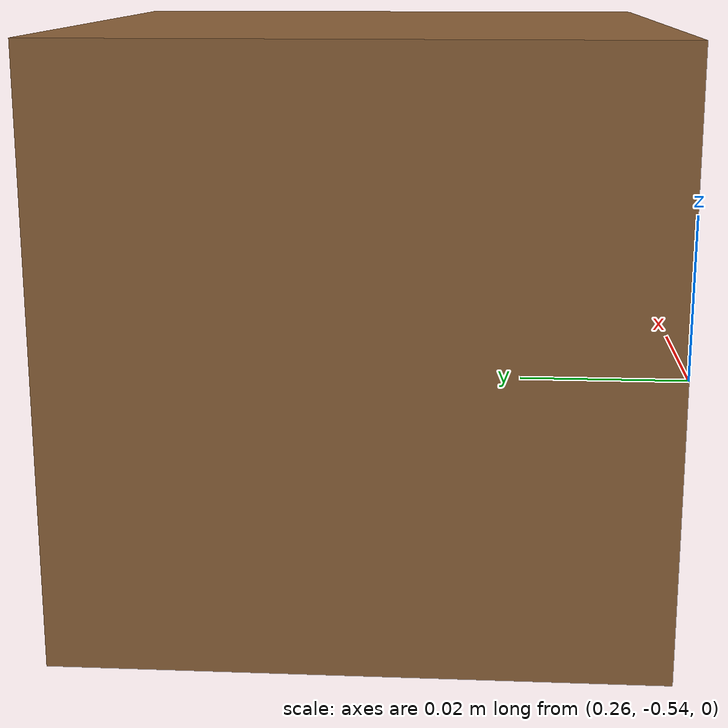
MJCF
<mujoco model="small_cube">
  <asset>
    <material name="cube_wood" rgba="0.55 0.38 0.22 1" specular="0.15" shininess="0.25"/>
  </asset>

  <worldbody>
    <body name="body_obj_cube" pos="0.3 -0.5 0">
      <freejoint/>
      <!-- Жёсткий box: solref/solimp как у «твёрдого» контакта MuJoCo, condim=6 для хвата, margin раньше включает контакт -->
      <geom
        name="small_cube_geom"
        type="box"
        size="0.04 0.04 0.04"
        mass="0.1"
        material="cube_wood"
        friction="2.0 0.12 0.02"
        condim="6"
        solref="0.005 1"
        solimp="0.999 0.9999 1e-4"
        margin="0.001"/>
      <site rgba="0 0 0 0" size="0.005" pos="0 0 -0.015" name="bottom_site_cube"/>
      <site rgba="0 0 0 0" size="0.005" pos="0 0 0.015" name="top_site_cube"/>
    </body>
  </worldbody>
</mujoco>
